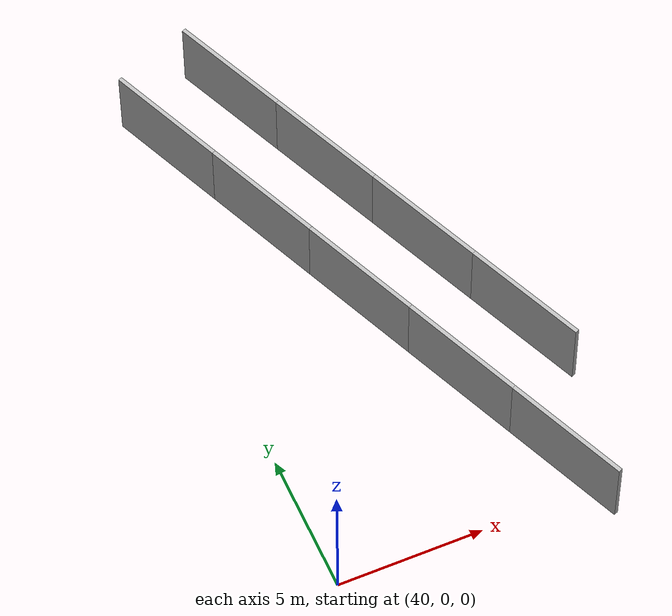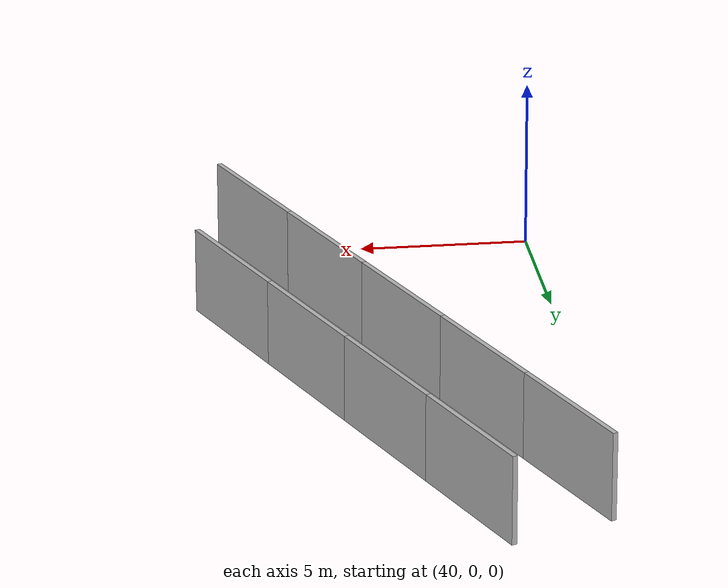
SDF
<?xml version="1.0" ?>
<sdf version="1.6">
  <model name="sps_4823">
    <pose frame="">0 0 0 0 -0 0</pose>
    <static>1</static>
    <self_collide>0</self_collide>
    <allow_auto_disable>0</allow_auto_disable>
    <link name="Wall3504">
      <kinematic>0</kinematic>
      <gravity>1</gravity>
      <self_collide>0</self_collide>
      <collision name="collision">
        <geometry>
          <box>
            <size>4.5267 0.15 2.5</size>
          </box>
        </geometry>
        <pose frame="">0 0 0 0 -0 0</pose>
      </collision>
      <visual name="visual">
        <geometry>
          <box>
            <size>4.5267 0.15 2.5</size>
          </box>
        </geometry>
        <pose frame="">0 0 0 0 -0 0</pose>
        <cast_shadows>1</cast_shadows>
        <transparency>0.0</transparency>
      </visual>
      <pose frame="">41.5051 17.7543 1.25 0 0 -1.18643</pose>
    </link>
    <link name="Wall3505">
      <kinematic>0</kinematic>
      <gravity>1</gravity>
      <self_collide>0</self_collide>
      <collision name="collision">
        <geometry>
          <box>
            <size>4.52766 0.15 2.5</size>
          </box>
        </geometry>
        <pose frame="">0 0 0 0 -0 0</pose>
      </collision>
      <visual name="visual">
        <geometry>
          <box>
            <size>4.52766 0.15 2.5</size>
          </box>
        </geometry>
        <pose frame="">0 0 0 0 -0 0</pose>
        <cast_shadows>1</cast_shadows>
        <transparency>0.0</transparency>
      </visual>
      <pose frame="">43.2028 13.5575 1.25 0 0 -1.18637</pose>
    </link>
    <link name="Wall4700">
      <kinematic>0</kinematic>
      <gravity>1</gravity>
      <self_collide>0</self_collide>
      <collision name="collision">
        <geometry>
          <box>
            <size>4.52663 0.15 2.5</size>
          </box>
        </geometry>
        <pose frame="">0 0 0 0 -0 0</pose>
      </collision>
      <visual name="visual">
        <geometry>
          <box>
            <size>4.52663 0.15 2.5</size>
          </box>
        </geometry>
        <pose frame="">0 0 0 0 -0 0</pose>
        <cast_shadows>1</cast_shadows>
        <transparency>0.0</transparency>
      </visual>
      <pose frame="">44.9004 9.36067 1.25 0 0 -1.18647</pose>
    </link>
    <link name="Wall4701">
      <kinematic>0</kinematic>
      <gravity>1</gravity>
      <self_collide>0</self_collide>
      <collision name="collision">
        <geometry>
          <box>
            <size>4.5268 0.15 2.5</size>
          </box>
        </geometry>
        <pose frame="">0 0 0 0 -0 0</pose>
      </collision>
      <visual name="visual">
        <geometry>
          <box>
            <size>4.5268 0.15 2.5</size>
          </box>
        </geometry>
        <pose frame="">0 0 0 0 -0 0</pose>
        <cast_shadows>1</cast_shadows>
        <transparency>0.0</transparency>
      </visual>
      <pose frame="">46.5976 5.16417 1.25 0 0 -1.18648</pose>
    </link>
    <link name="Wall4702">
      <kinematic>0</kinematic>
      <gravity>1</gravity>
      <self_collide>0</self_collide>
      <collision name="collision">
        <geometry>
          <box>
            <size>4.52577 0.15 2.5</size>
          </box>
        </geometry>
        <pose frame="">0 0 0 0 -0 0</pose>
      </collision>
      <visual name="visual">
        <geometry>
          <box>
            <size>4.52577 0.15 2.5</size>
          </box>
        </geometry>
        <pose frame="">0 0 0 0 -0 0</pose>
        <cast_shadows>1</cast_shadows>
        <transparency>0.0</transparency>
      </visual>
      <pose frame="">48.2948 0.968093 1.25 0 0 -1.18643</pose>
    </link>
    <link name="Wall6437">
      <kinematic>0</kinematic>
      <gravity>1</gravity>
      <self_collide>0</self_collide>
      <collision name="collision">
        <geometry>
          <box>
            <size>4.5268 0.15 2.5</size>
          </box>
        </geometry>
        <pose frame="">0 0 0 0 -0 0</pose>
      </collision>
      <visual name="visual">
        <geometry>
          <box>
            <size>4.5268 0.15 2.5</size>
          </box>
        </geometry>
        <pose frame="">0 0 0 0 -0 0</pose>
        <cast_shadows>1</cast_shadows>
        <transparency>0.0</transparency>
      </visual>
      <pose frame="">47.6816 10.4856 1.25 0 0 -1.18648</pose>
    </link>
    <link name="Wall6438">
      <kinematic>0</kinematic>
      <gravity>1</gravity>
      <self_collide>0</self_collide>
      <collision name="collision">
        <geometry>
          <box>
            <size>4.5268 0.15 2.5</size>
          </box>
        </geometry>
        <pose frame="">0 0 0 0 -0 0</pose>
      </collision>
      <visual name="visual">
        <geometry>
          <box>
            <size>4.5268 0.15 2.5</size>
          </box>
        </geometry>
        <pose frame="">0 0 0 0 -0 0</pose>
        <cast_shadows>1</cast_shadows>
        <transparency>0.0</transparency>
      </visual>
      <pose frame="">49.3788 6.28899 1.25 0 0 -1.18648</pose>
    </link>
    <link name="Wall9154">
      <kinematic>0</kinematic>
      <gravity>1</gravity>
      <self_collide>0</self_collide>
      <collision name="collision">
        <geometry>
          <box>
            <size>4.52653 0.15 2.5</size>
          </box>
        </geometry>
        <pose frame="">0 0 0 0 -0 0</pose>
      </collision>
      <visual name="visual">
        <geometry>
          <box>
            <size>4.52653 0.15 2.5</size>
          </box>
        </geometry>
        <pose frame="">0 0 0 0 -0 0</pose>
        <cast_shadows>1</cast_shadows>
        <transparency>0.0</transparency>
      </visual>
      <pose frame="">44.2863 18.8792 1.25 0 0 -1.18641</pose>
    </link>
    <link name="Wall9155">
      <kinematic>0</kinematic>
      <gravity>1</gravity>
      <self_collide>0</self_collide>
      <collision name="collision">
        <geometry>
          <box>
            <size>4.52766 0.15 2.5</size>
          </box>
        </geometry>
        <pose frame="">0 0 0 0 -0 0</pose>
      </collision>
      <visual name="visual">
        <geometry>
          <box>
            <size>4.52766 0.15 2.5</size>
          </box>
        </geometry>
        <pose frame="">0 0 0 0 -0 0</pose>
        <cast_shadows>1</cast_shadows>
        <transparency>0.0</transparency>
      </visual>
      <pose frame="">45.984 14.6825 1.25 0 0 -1.18637</pose>
    </link>
  </model>
</sdf>
